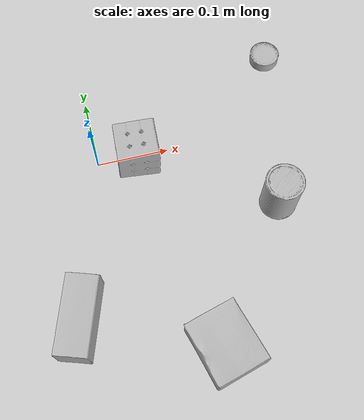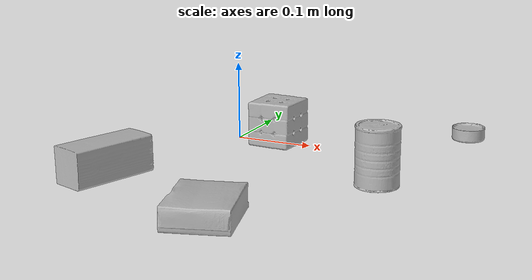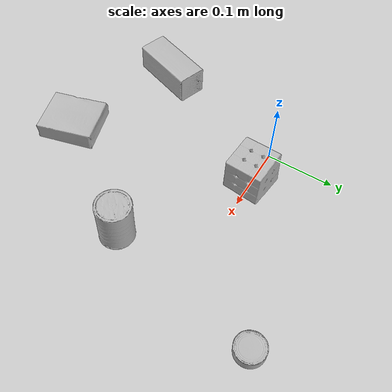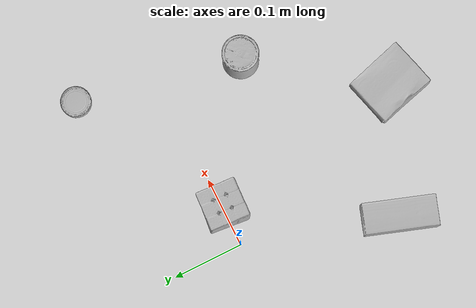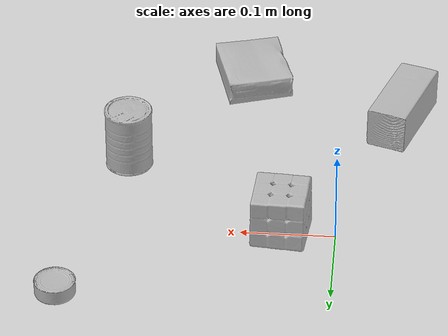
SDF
<sdf version="1.4">
  <world name="default">
    <light name="light1" type="point">
      <pose>0 0 1 0 0 0</pose>
      <diffuse>3 3 3 1</diffuse>
      <specular>3 3 3 1</specular>
    </light>
    <light name="light2" type="point">
      <pose>0 0.5 2 0 0 0</pose>
      <diffuse>1 1 1 1</diffuse>
      <specular>1 1 1 1</specular>
    </light>
    <light name="light3" type="point">
      <pose>0 0.5 2 0 0 0</pose>
      <diffuse>3 3 3 1</diffuse>
      <specular>3 3 3 1</specular>
    </light>
    <scene>
      <ambient>0.7 0.7 0.7</ambient>
    </scene>
    <model name="box1">
      <link name="link_box1">
        <collision name="default">
          <geometry>
            <mesh>
              <uri>model://rubiks_cube/collision_meshes/collision.obj</uri>
              <scale>1.0 1.0 1.0</scale>
            </mesh>
          </geometry>
          <surface>
            <friction>
              <ode>
                <mu>0.5</mu>
                <mu2>0.5</mu2>
              </ode>
            </friction>
          <contact>
        <ode>
            <max_vel>0</max_vel>
            <min_depth>0.0001</min_depth>
            <kp>1e8</kp>
        </ode>
    </contact></surface>
        </collision>
        <visual name="default">
          <geometry>
            <mesh>
              <uri>model://rubiks_cube/visual_meshes/visual.dae</uri>
              <scale>1.0 1.0 1.0</scale>
            </mesh>
          </geometry>
        </visual>
        <inertial>
          <mass>0.1675702929496765</mass>
          <pose>2.6721041649580002e-05 5.2569666877388954e-05 -7.264316082000732e-06 -0.054672410780645164 -0.09813946178663992 -0.034457105846518836</pose>
          <inertia>
            <ixx>9.259384e-05</ixx>
            <iyy>9.2162045e-05</iyy>
            <izz>9.336113e-05</izz>
            <ixy>0</ixy>
            <ixz>0</ixz>
            <iyz>0</iyz>
          </inertia>
        </inertial>
      </link>
      <pose>0.05725812539458275 -0.0019054849399253726 0.028678983449935913 -2.754968831593296e-06 -8.035580136540695e-07 -0.06473940397644104</pose>
    </model>
    <model name="box2">
      <link name="link_box2">
        <collision name="default">
          <geometry>
            <mesh>
              <uri>model://wood_block/collision_meshes/collision.obj</uri>
              <scale>0.5 0.5 0.5</scale>
            </mesh>
          </geometry>
          <surface>
            <friction>
              <ode>
                <mu>0.5</mu>
                <mu2>0.5</mu2>
              </ode>
            </friction>
          <contact>
        <ode>
            <max_vel>0</max_vel>
            <min_depth>0.0001</min_depth>
            <kp>1e8</kp>
        </ode>
    </contact></surface>
        </collision>
        <visual name="default">
          <geometry>
            <mesh>
              <uri>model://wood_block/visual_meshes/visual.dae</uri>
              <scale>0.5 0.5 0.5</scale>
            </mesh>
          </geometry>
        </visual>
        <inertial>
          <mass>0.20594346523284912</mass>
          <pose>-2.9066577553749084e-06 -0.000285404734313488 0.00013204291462898254 -0.05220975528833662 -0.005192695571830849 -0.0068613788586691015</pose>
          <inertia>
            <ixx>6.8895875e-05</ixx>
            <iyy>0.0002176421</iyy>
            <izz>0.00021682802</izz>
            <ixy>0</ixy>
            <ixz>0</ixz>
            <iyz>0</iyz>
          </inertia>
        </inertial>
      </link>
      <pose>-0.06267442554235458 -0.21171030402183533 0.022629257291555405 -0.005208566373208407 0.005718719644672504 1.2429592338711777</pose>
    </model>
    <model name="box3">
      <link name="link_box3">
        <collision name="default">
          <geometry>
            <mesh>
              <uri>model://gelatin_box/collision_meshes/collision.obj</uri>
              <scale>1.0 1.0 1.0</scale>
            </mesh>
          </geometry>
          <surface>
            <friction>
              <ode>
                <mu>0.5</mu>
                <mu2>0.5</mu2>
              </ode>
            </friction>
          <contact>
        <ode>
            <max_vel>0</max_vel>
            <min_depth>0.0001</min_depth>
            <kp>1e8</kp>
        </ode>
    </contact></surface>
        </collision>
        <visual name="default">
          <geometry>
            <mesh>
              <uri>model://gelatin_box/visual_meshes/visual.dae</uri>
              <scale>1.0 1.0 1.0</scale>
            </mesh>
          </geometry>
        </visual>
        <inertial>
          <mass>0.27371785044670105</mass>
          <pose>0.0004319618456065655 0.00011156871914863586 -0.0003640321083366871 -0.0010503717367230932 -0.004755817294347581 0.01644056133308036</pose>
          <inertia>
            <ixx>0.00019322247</ixx>
            <iyy>0.00013801781</iyy>
            <izz>0.00029412765</izz>
            <ixy>0</ixy>
            <ixz>0</ixz>
            <iyz>0</iyz>
          </inertia>
        </inertial>
      </link>
      <pose>0.10688493400812149 -0.2838451564311981 0.01516831573098898 0.0055970958551664375 -0.007304112583776599 -2.8778608434190023</pose>
    </model>
    <model name="can1">
      <link name="link_can1">
        <collision name="default">
          <geometry>
            <mesh>
              <uri>model://master_chef_can/collision_meshes/collision.obj</uri>
              <scale>0.5 0.5 0.5</scale>
            </mesh>
          </geometry>
          <surface>
            <friction>
              <ode>
                <mu>0.5</mu>
                <mu2>0.5</mu2>
              </ode>
            </friction>
          <contact>
        <ode>
            <max_vel>0</max_vel>
            <min_depth>0.0001</min_depth>
            <kp>1e8</kp>
        </ode>
    </contact></surface>
        </collision>
        <visual name="default">
          <geometry>
            <mesh>
              <uri>model://master_chef_can/visual_meshes/visual.dae</uri>
              <scale>0.5 0.5 0.5</scale>
            </mesh>
          </geometry>
        </visual>
        <inertial>
          <mass>0.18439537286758423</mass>
          <pose>-4.6619643399026245e-05 1.3926847941547749e-07 -5.080040136817843e-05 -0.0017995053130472594 0.0006479450382529565 -0.6102509153361354</pose>
          <inertia>
            <ixx>0.00010822757</ixx>
            <iyy>0.00010743104</iyy>
            <izz>5.9804017e-05</izz>
            <ixy>0</ixy>
            <ixz>0</ixz>
            <iyz>0</iyz>
          </inertia>
        </inertial>
      </link>
      <pose>0.22889059782028198 -0.1144494041800499 0.03530198708176613 -1.3339772941310788e-06 -1.1179379376630104e-06 1.2667774948314843</pose>
    </model>
    <model name="can2">
      <link name="link_can2">
        <collision name="default">
          <geometry>
            <mesh>
              <uri>model://tuna_fish_can/collision_meshes/collision.obj</uri>
              <scale>0.5 0.5 0.5</scale>
            </mesh>
          </geometry>
          <surface>
            <friction>
              <ode>
                <mu>0.5</mu>
                <mu2>0.5</mu2>
              </ode>
            </friction>
          <contact>
        <ode>
            <max_vel>0</max_vel>
            <min_depth>0.0001</min_depth>
            <kp>1e8</kp>
        </ode>
    </contact></surface>
        </collision>
        <visual name="default">
          <geometry>
            <mesh>
              <uri>model://tuna_fish_can/visual_meshes/visual.dae</uri>
              <scale>0.5 0.5 0.5</scale>
            </mesh>
          </geometry>
        </visual>
        <inertial>
          <mass>0.02825223281979561</mass>
          <pose>-2.0362142095109448e-05 -7.256046956172213e-06 -0.0005269023240543902 -0.0017944745775900258 0.00017164550693472895 0.24055441971144348</pose>
          <inertia>
            <ixx>3.819744e-06</ixx>
            <iyy>3.803824e-06</iyy>
            <izz>6.536128e-06</izz>
            <ixy>0</ixy>
            <ixz>0</ixz>
            <iyz>0</iyz>
          </inertia>
        </inertial>
      </link>
      <pose>0.27831539511680603 0.1153070256114006 0.008520003408193588 -4.418816201183853e-09 -6.598028157104734e-09 -1.2148184378509501</pose>
    </model>
  <physics type="ode">
      <max_contacts>50</max_contacts>
      <ode>
        <solver>
          <type>quick</type>
          <iters>75</iters>
        </solver>
        <constraints>
          <contact_max_correcting_vel>0</contact_max_correcting_vel>
          <contact_surface_layer>0</contact_surface_layer>
        </constraints>
      </ode>
    </physics></world>
</sdf>
